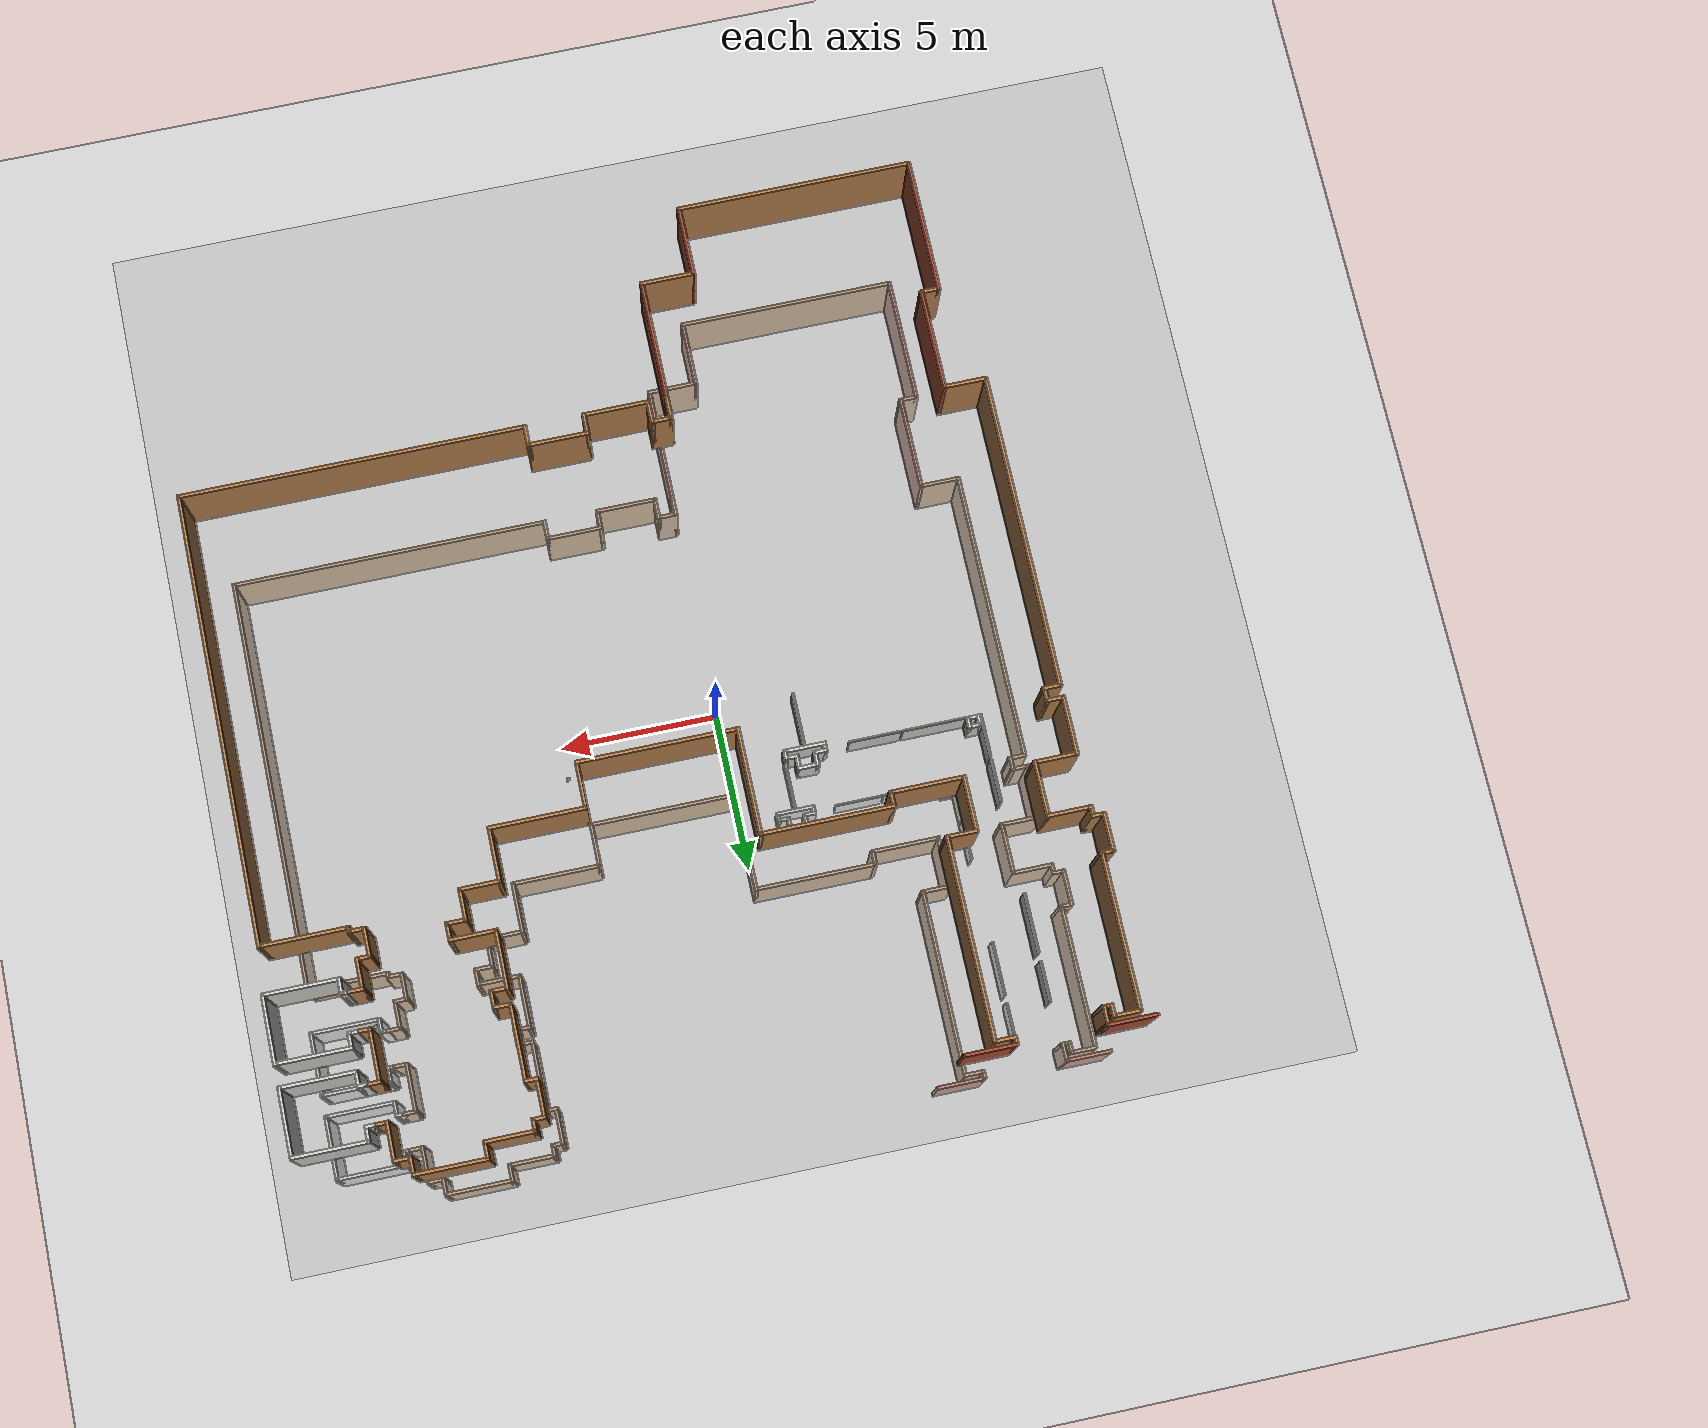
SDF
<sdf version="1.7">
 <world name="default">
  <include><uri>model://ground_plane</uri></include>
  <include><uri>model://sun</uri></include>
  <model name="cube_1f">
   <static>true</static>
   <include><uri>model://cube</uri></include>
   <pose>5.0 1.0 0.05 0 0 0</pose>
  </model>
  <model name="cube_3f">
   <static>true</static>
   <include><uri>model://cube</uri></include>
   <pose>11.5 8.7 10.05 0 0 0</pose>
  </model>
  <physics type="ode">
   <max_step_size>0.01</max_step_size>
   <real_time_factor>1</real_time_factor>
   <real_time_update_rate>100</real_time_update_rate>
   <gravity>0 0 -9.8</gravity>
  </physics>
  <model name="link_1F_model">
   <static>true</static>
   <model name="link_1F"><static>true</static><include><uri>model://test-floor</uri></include></model>
  </model>
  <model name="link_3F_model">
   <pose>0 0 10 0 0 0</pose>
   <static>true</static>
   <model name="link_3F_floor">
    <static>true</static>
    <link name="3f_plane">
     <visual name="3f_plane_Visual">
      <geometry><box><size>30 30 0.01</size></box></geometry>
      <transparency>0.5</transparency>
     </visual>
     <collision name="3f_plane_Collision"><geometry><box><size>30 30 0.01</size></box></geometry></collision>
    </link>
   </model>
   <model name="link_3F"><static>true</static><include><uri>model://test-floor</uri></include></model>
  </model>
 </world>
</sdf>

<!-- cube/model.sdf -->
<sdf version='1.7'>
  <model name='cube'>
    <link name='link_1'>
      <inertial>
        <mass>0.0222227</mass>
        <inertia>
          <ixx>0.00029276</ixx>
          <ixy>0</ixy>
          <ixz>0</ixz>
          <iyy>0.00029276</iyy>
          <iyz>0</iyz>
          <izz>0.00029276</izz>
        </inertia>
        <pose>0 0 0 0 -0 0</pose>
      </inertial>
      <pose>0 0 0 0 -0 0</pose>
      <visual name='visual'>
        <pose>0 0 0 0 -0 0</pose>
        <geometry>
          <box>
            <size>0.1 0.1 0.1</size>
          </box>
        </geometry>
        <material>
          <lighting>1</lighting>
          <script>
            <uri>file://media/materials/scripts/gazebo.material</uri>
            <name>Gazebo/Grey</name>
          </script>
          <shader type='pixel'/>
        </material>
        <transparency>0</transparency>
        <cast_shadows>1</cast_shadows>
      </visual>
      <collision name='collision'>
        <laser_retro>0</laser_retro>
        <max_contacts>10</max_contacts>
        <pose>0 0 0 0 -0 0</pose>
        <geometry>
          <box>
            <size>0.1 0.1 0.1</size>
          </box>
        </geometry>
        <surface>
          <friction>
            <ode>
              <mu>1</mu>
              <mu2>1</mu2>
              <fdir1>0 0 0</fdir1>
              <slip1>0</slip1>
              <slip2>0</slip2>
            </ode>
            <torsional>
              <coefficient>1</coefficient>
              <patch_radius>0</patch_radius>
              <surface_radius>0</surface_radius>
              <use_patch_radius>1</use_patch_radius>
              <ode>
                <slip>0</slip>
              </ode>
            </torsional>
          </friction>
          <bounce>
            <restitution_coefficient>0</restitution_coefficient>
            <threshold>1e+06</threshold>
          </bounce>
          <contact>
            <collide_without_contact>0</collide_without_contact>
            <collide_without_contact_bitmask>1</collide_without_contact_bitmask>
            <collide_bitmask>1</collide_bitmask>
            <ode>
              <soft_cfm>0</soft_cfm>
              <soft_erp>0.2</soft_erp>
              <kp>1e+13</kp>
              <kd>1</kd>
              <max_vel>0.01</max_vel>
              <min_depth>0</min_depth>
            </ode>
            <bullet>
              <split_impulse>1</split_impulse>
              <split_impulse_penetration_threshold>-0.01</split_impulse_penetration_threshold>
              <soft_cfm>0</soft_cfm>
              <soft_erp>0.2</soft_erp>
              <kp>1e+13</kp>
              <kd>1</kd>
            </bullet>
          </contact>
        </surface>
      </collision>
    </link>
    <static>0</static>
    <allow_auto_disable>1</allow_auto_disable>
  </model>
</sdf>
